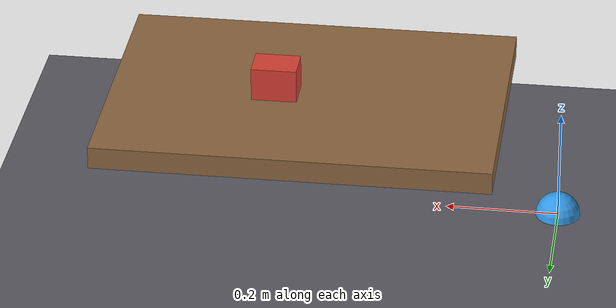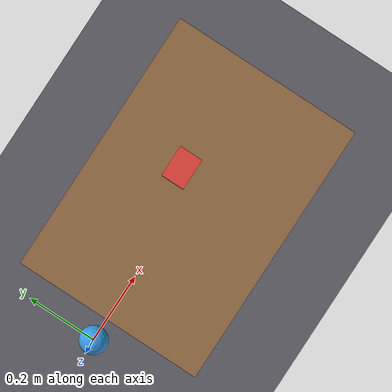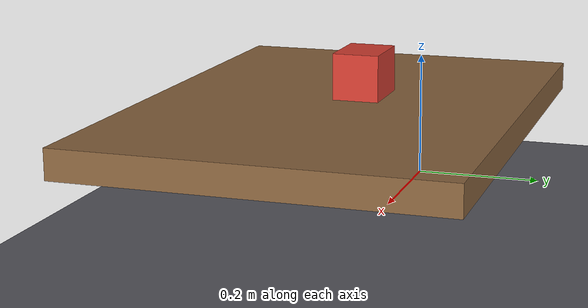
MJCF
<!-- MVP 场景：滑动末端 + 桌面/物体（仅视觉）+ 固定相机。 -->
<mujoco model="acp_ee_plane">
  <compiler angle="radian" inertiafromgeom="true"/>
  <option timestep="0.002" gravity="0 0 -9.81"/>
  <visual>
    <global offwidth="640" offheight="480"/>
  </visual>

  <worldbody>
    <light pos="0 0 2.5" dir="0 0 -1" diffuse="0.8 0.8 0.8"/>
    <light pos="1 1 2" dir="-0.3 -0.3 -1" diffuse="0.4 0.4 0.4"/>
    <geom name="floor" type="plane" size="2 2 0.05" rgba="0.35 0.35 0.38 1"
          contype="1" conaffinity="1"/>

    <!-- 桌面 / 物体：仅视觉，不参与碰撞，避免干扰跟踪 -->
    <body name="table" pos="0.45 0 0.0">
      <geom name="table_top" type="box" size="0.35 0.25 0.02" pos="0 0 0.20"
            rgba="0.55 0.40 0.25 1" contype="0" conaffinity="0"/>
    </body>
    <body name="obj" pos="0.50 0.05 0.27">
      <geom name="obj_box" type="box" size="0.04 0.03 0.03"
            rgba="0.85 0.25 0.20 1" contype="0" conaffinity="0"/>
    </body>

    <camera name="wrist_cam" pos="0.45 -0.55 0.55"
            xyaxes="1 0 0 0 0.5 0.866" fovy="50"/>

    <body name="ee_x" pos="0 0 0">
      <inertial pos="0 0 0" mass="0.05" diaginertia="1e-4 1e-4 1e-4"/>
      <joint name="slide_x" type="slide" axis="1 0 0" range="-1.5 1.5" damping="5"/>
      <body name="ee_y">
        <inertial pos="0 0 0" mass="0.05" diaginertia="1e-4 1e-4 1e-4"/>
        <joint name="slide_y" type="slide" axis="0 1 0" range="-1.5 1.5" damping="5"/>
        <body name="ee_z">
          <joint name="slide_z" type="slide" axis="0 0 1" range="0.05 1.5" damping="5"/>
          <!-- 末端不与地板碰撞，保证位置伺服干净 -->
          <geom name="ee_geom" type="sphere" size="0.04" mass="0.5"
                rgba="0.2 0.6 0.9 1" contype="0" conaffinity="0"/>
          <site name="ee_site" pos="0 0 0" size="0.01"/>
        </body>
      </body>
    </body>
  </worldbody>

  <actuator>
    <position name="act_x" joint="slide_x" kp="800" dampratio="1" ctrlrange="-1.5 1.5"/>
    <position name="act_y" joint="slide_y" kp="800" dampratio="1" ctrlrange="-1.5 1.5"/>
    <position name="act_z" joint="slide_z" kp="800" dampratio="1" ctrlrange="0.05 1.5"/>
  </actuator>

  <keyframe>
    <key name="home" qpos="0.4 0 0.35" ctrl="0.4 0 0.35"/>
  </keyframe>
</mujoco>
